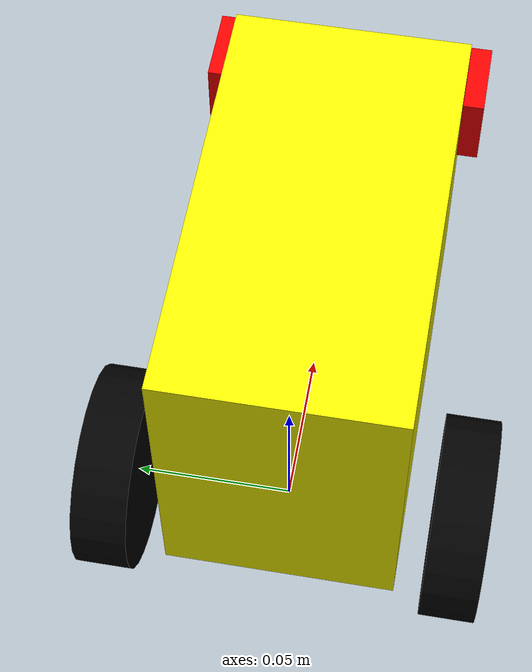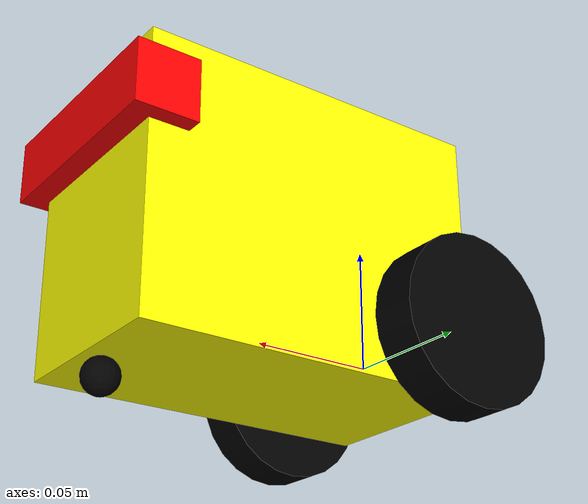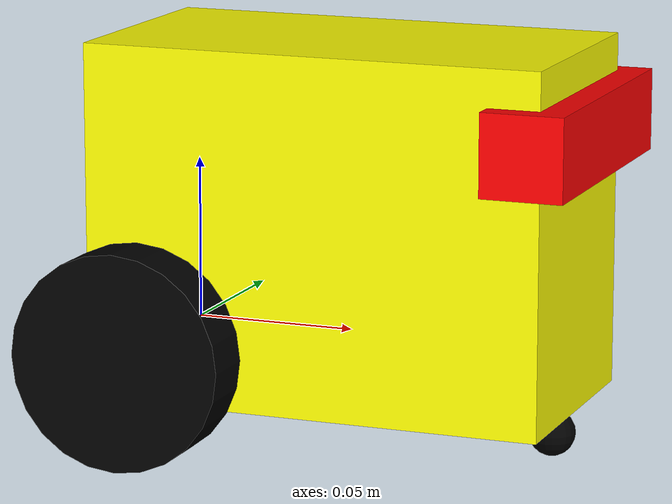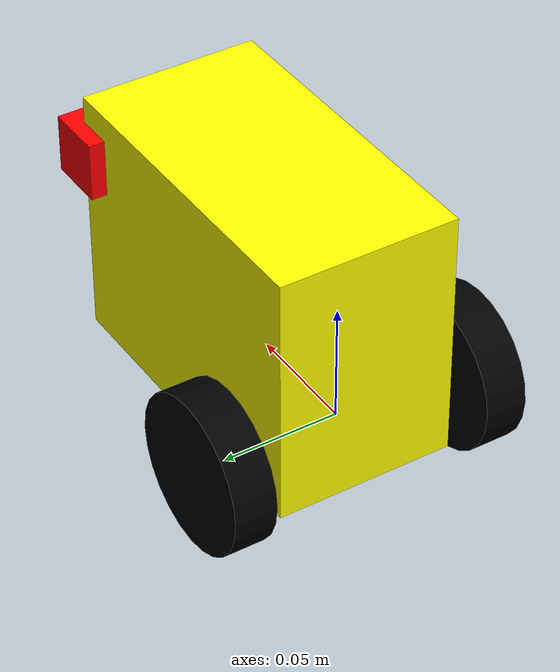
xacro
<?xml version="1.0"?>
<robot xmlns:xacro="http://www.ros.org/wiki/xacro" name="nanobot">

  <xacro:arg name="sim_mode" default="false" />

  <xacro:include filename="robot_core.xacro" />

  <xacro:include filename="camera.xacro" />

  <xacro:if value="$(arg sim_mode)">
    <xacro:include filename="$(find nanobot_diffdrive)/description/gazebo_ros2_control.xacro" />
  </xacro:if>
  <xacro:unless value="$(arg sim_mode)">
    <xacro:include filename="$(find nanobot_diffdrive)/description/ros2_control.xacro" />
  </xacro:unless>

</robot>

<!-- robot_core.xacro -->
<robot xmlns:xacro="http://www.ros.org/wiki/xacro" name="nanobot">

  <xacro:include filename="inertial_macros.xacro" />

  <!-- Body dimensions -->
  <xacro:property name="body_x_dim" value="0.1425" />
  <xacro:property name="body_y_dim" value="0.0765" />
  <xacro:property name="body_z_dim" value="0.109" />
  <xacro:property name="body_x_offset" value="0.02075" />
  <xacro:property name="body_z_offset" value="0.01875" />

  <!-- Wheel dimensions -->
  <xacro:property name="wheel_radius" value="0.033" /> <!-- 66mm diameter -->
  <xacro:property name="wheel_length" value="0.018" />
  <xacro:property name="wheel_separation_from_body" value="0.009" />
  <xacro:property name="caster_wheel_radius" value="${(wheel_radius - body_z_offset)/2}" />

  <!-- Robot body and wheel mass -->
  <xacro:property name="body_mass" value="0.941" />
  <xacro:property name="wheel_mass" value="0.028" />
  <xacro:property name="caster_wheel_mass" value="0.041" />

  <!-- Moments of intertia of the wheel -->
  <xacro:macro name="inertia_wheel">
    <xacro:inertial_cylinder mass="${wheel_mass}" length="${wheel_length}"
      radius="${wheel_radius}">
      <origin xyz="0 0 0" rpy="0 0 0" />
    </xacro:inertial_cylinder>
  </xacro:macro>

  <!-- Moments of intertia of the caster wheel -->
  <xacro:macro name="inertia_caster_wheel">
    <xacro:inertial_sphere mass="${caster_wheel_mass}" radius="${caster_wheel_radius}">
      <origin xyz="0 0 0" rpy="0 0 0" />
    </xacro:inertial_sphere>
  </xacro:macro>

  <!-- Materials -->

  <material name="yellow">
    <color rgba="1 1 0 1" />
  </material>

  <material name="black">
    <color rgba="0 0 0 1" />
  </material>

  <material name="red">
    <color rgba="1 0 0 1" />
  </material>

  <!-- Links and joints definition -->

  <!-- Base link -->

  <link name="base_link"></link>

  <!-- Base footprint -->

  <joint name="base_footprint_joint" type="fixed">
    <parent link="base_link"/>
    <child link="base_footprint"/>
    <origin xyz="0 0 0" rpy="0 0 0"/>
  </joint>

  <link name="base_footprint">
  </link>

  <!-- Body -->

  <joint name="body_joint" type="fixed">
    <parent link="base_link" />
    <child link="body_link" />
    <origin xyz="-${body_x_offset} 0 -${body_z_offset}"/>
  </joint>

  <link name="body_link">
    <visual>
      <origin xyz="${body_x_dim/2} 0 ${body_z_dim/2}" rpy="0 0 0" />
      <geometry>
        <box size="${body_x_dim} ${body_y_dim} ${body_z_dim}" />
      </geometry>
      <material name="yellow" />
    </visual>
    <collision>
      <origin xyz="${body_x_dim/2} 0 ${body_z_dim/2}" rpy="0 0 0" />
      <geometry>
        <box size="${body_x_dim} ${body_y_dim} ${body_z_dim}" />
      </geometry>
    </collision>
    <xacro:inertial_box mass="${body_mass}" x="${body_x_dim}" y="${body_y_dim}"
      z="${body_z_dim}">
      <origin xyz="${body_x_dim/2} 0 ${body_z_dim/2}" rpy="0 0 0" />
    </xacro:inertial_box>
  </link>

  <gazebo reference="body_link">
    <material>Gazebo/Yellow</material>
  </gazebo>

  <!-- Left wheel -->

  <joint name="left_wheel_joint" type="continuous">
    <parent link="base_link" />
    <child link="left_wheel_link" />
    <origin
      xyz="0 ${body_y_dim/2 + wheel_length/2 + wheel_separation_from_body} 0"
      rpy="-${pi/2} 0 0" />
    <axis xyz="0 0 1" />
    <limit effort="100" velocity="100" />
  </joint>

  <link name="left_wheel_link">
    <visual>
      <geometry>
        <cylinder length="${wheel_length}" radius="${wheel_radius}" />
      </geometry>
      <material name="black" />
    </visual>
    <collision>
      <geometry>
        <sphere radius="${wheel_radius}" />
      </geometry>
    </collision>
    <xacro:inertia_wheel />
  </link>

  <gazebo reference="left_wheel_link">
    <material>Gazebo/Black</material>
  </gazebo>

  <!-- Right wheel -->

  <joint name="right_wheel_joint" type="continuous">
    <parent link="base_link" />
    <child link="right_wheel_link" />
    <origin
      xyz="0 -${body_y_dim/2 + wheel_length/2 + wheel_separation_from_body} 0"
      rpy="${pi/2} 0 0" />
    <axis xyz="0 0 -1" />
    <limit effort="100" velocity="100" />
  </joint>

  <link name="right_wheel_link">
    <visual>
      <geometry>
        <cylinder length="${wheel_length}" radius="${wheel_radius}" />
      </geometry>
      <material name="black" />
    </visual>
    <collision>
      <geometry>
        <sphere radius="${wheel_radius}" />
      </geometry>
    </collision>
    <xacro:inertia_wheel />
  </link>

  <gazebo reference="right_wheel_link">
    <material>Gazebo/Black</material>
  </gazebo>

  <!-- Caster wheel -->

  <joint name="caster_wheel_joint" type="fixed">
      <parent link="body_link"/>
      <child link="caster_wheel_link"/>
      <origin
        xyz="${body_x_dim - caster_wheel_radius} 0 -${caster_wheel_radius}"
        rpy="0 0 0"/>
  </joint>

  <link name="caster_wheel_link">
    <visual>
      <geometry>
        <sphere radius="${caster_wheel_radius}" />
      </geometry>
      <material name="black"/>
    </visual>
    <collision>
      <geometry>
        <sphere radius="${caster_wheel_radius}" />
      </geometry>
    </collision>
    <xacro:inertia_caster_wheel />
  </link>

  <gazebo reference="caster_wheel_link">
    <material>Gazebo/Black</material>
    <mu1 value="0.001"/>
    <mu2 value="0.001"/>
  </gazebo>

</robot>

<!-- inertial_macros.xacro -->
<robot xmlns:xacro="http://www.ros.org/wiki/xacro">

  <!-- Specify some standard inertial calculations
  https://en.wikipedia.org/wiki/List_of_moments_of_inertia -->
  <!-- These make use of xacro's mathematical functionality -->

  <xacro:macro name="inertial_sphere" params="mass radius *origin">
    <inertial>
      <xacro:insert_block name="origin" />
      <mass value="${mass}" />
      <inertia ixx="${(2/5) * mass * (radius*radius)}" ixy="0.0" ixz="0.0"
        iyy="${(2/5) * mass * (radius*radius)}" iyz="0.0"
        izz="${(2/5) * mass * (radius*radius)}" />
    </inertial>
  </xacro:macro>

  <xacro:macro name="inertial_box" params="mass x y z *origin">
    <inertial>
      <xacro:insert_block name="origin" />
      <mass value="${mass}" />
      <inertia ixx="${(1/12) * mass * (y*y+z*z)}" ixy="0.0" ixz="0.0"
        iyy="${(1/12) * mass * (x*x+z*z)}" iyz="0.0"
        izz="${(1/12) * mass * (x*x+y*y)}" />
    </inertial>
  </xacro:macro>

  <xacro:macro name="inertial_cylinder" params="mass length radius *origin">
    <inertial>
      <xacro:insert_block name="origin" />
      <mass value="${mass}" />
      <inertia ixx="${(1/12) * mass * (3*radius*radius + length*length)}" ixy="0.0" ixz="0.0"
        iyy="${(1/12) * mass * (3*radius*radius + length*length)}" iyz="0.0"
        izz="${(1/2) * mass * (radius*radius)}" />
    </inertial>
  </xacro:macro>

</robot>

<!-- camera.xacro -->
<robot xmlns:xacro="http://www.ros.org/wiki/xacro" name="nanobot">

  <!-- Camera specs -->
  <xacro:property name="camera_x_dim" value="0.025" />
  <xacro:property name="camera_y_dim" value="0.09" />
  <xacro:property name="camera_z_dim" value="0.025" />
  <xacro:property name="camera_x_offset" value="0.009" />
  <xacro:property name="camera_height" value="0.085" />
  <xacro:property name="sensor_offset" value="0.0175" />

  <!-- Links and joints definition -->

  <joint name="camera_joint" type="fixed">
    <parent link="body_link" />
    <child link="camera_link" />
    <origin xyz="${body_x_dim + camera_x_offset} ${sensor_offset} ${camera_height}" rpy="0 0 0" />
  </joint>

  <link name="camera_link">
    <visual>
      <origin xyz="-${camera_x_dim/2} -${sensor_offset} 0" rpy="0 0 0" />
      <geometry>
        <box size="${camera_x_dim} ${camera_y_dim} ${camera_z_dim}" />
      </geometry>
      <material name="red" />
    </visual>
  </link>

  <joint name="camera_optical_joint" type="fixed">
    <parent link="camera_link" />
    <child link="camera_optical_link" />
    <origin xyz="0 0 0" rpy="-${pi/2} 0 -${pi/2}" />
  </joint>

  <link name="camera_optical_link" />

  <!-- Gazebo -->

  <gazebo reference="camera_link">
    <material>Gazebo/Red</material>

    <sensor name="camera" type="camera">
      <pose> 0 0 0 0 0 0 </pose>
      <visualize>true</visualize>
      <update_rate>10</update_rate>
      <camera>
        <camera_info_topic>camera/color/camera_info</camera_info_topic>
        <horizontal_fov>1.089</horizontal_fov>
        <image>
          <format>R8G8B8</format>
          <width>640</width>
          <height>480</height>
        </image>
        <clip>
          <near>0.05</near>
          <far>8.0</far>
        </clip>
      </camera>
      <topic>camera/color/image_raw</topic>
      <gz_frame_id>camera_optical_link</gz_frame_id>
    </sensor>

    <sensor name="depth_camera" type="depth_camera">
      <pose> 0 0 0 0 0 0 </pose>
      <visualize>true</visualize>
      <always_on>1</always_on>
      <update_rate>10</update_rate>
      <camera>
        <camera_info_topic>camera/depth/camera_info</camera_info_topic>
        <horizontal_fov>1.089</horizontal_fov>
        <image>
          <format>R_FLOAT32</format>
          <width>640</width>
          <height>480</height>
        </image>
        <clip>
          <near>0.05</near>
          <far>8.0</far>
        </clip>
      </camera>
      <topic>camera/depth/image_rect_raw</topic>
      <ignition_frame_id>camera_link</ignition_frame_id>
    </sensor>
  </gazebo>

</robot>
